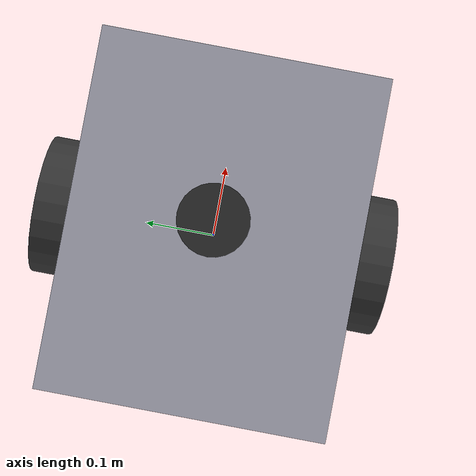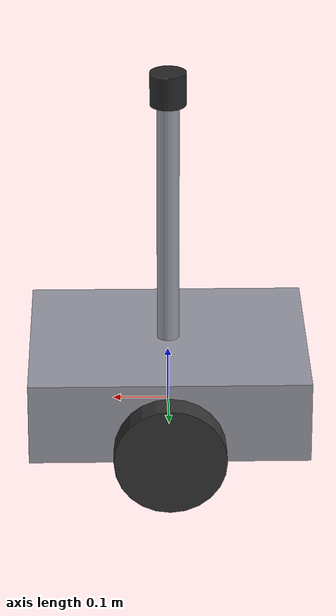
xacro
<?xml version="1.0"?>
<robot name="test_rig" xmlns:xacro="http://www.ros.org/wiki/xacro">
  <xacro:arg name="sensor" default="raycast"/>
  <xacro:arg name="lidar_mode" default="sliced"/>  <!-- sensor:=modes only -->
  <xacro:arg name="slices" default="5"/>          <!-- sensor:=modes, lidar_mode:=sliced -->
  <xacro:arg name="geometry_source" default="collision"/>
  <xacro:arg name="pattern_file" default="model://livox_mid360/scan_mode/mid360.csv"/>
  <xacro:arg name="dense_rate" default="50"/>
  <xacro:arg name="range_noise" default="0.02"/>
  <xacro:arg name="dense_h" default="1440"/>
  <xacro:arg name="dense_v" default="160"/>

  <xacro:include filename="$(find livox_mid360_sim)/urdf/livox_mid360.urdf.xacro"/>

  <xacro:property name="wheel_r" value="0.1"/>
  <xacro:property name="wheel_sep" value="0.45"/>
  <xacro:property name="mast_len" value="0.45"/>

  <material name="rig_grey"><color rgba="0.6 0.6 0.65 1"/></material>
  <material name="rig_dark"><color rgba="0.2 0.2 0.2 1"/></material>

  <link name="base_link">
    <inertial>
      <origin xyz="0 0 0.05"/>
      <mass value="8.0"/>
      <inertia ixx="0.12" iyy="0.18" izz="0.27" ixy="0" ixz="0" iyz="0"/>
    </inertial>
    <visual>
      <origin xyz="0 0 0.05"/>
      <geometry><box size="0.5 0.4 0.15"/></geometry>
      <material name="rig_grey"/>
    </visual>
    <collision>
      <origin xyz="0 0 0.05"/>
      <geometry><box size="0.5 0.4 0.15"/></geometry>
    </collision>
    <!-- casters (frictionless spheres) -->
    <collision>
      <origin xyz="0.2 0 -0.05"/>
      <geometry><sphere radius="0.05"/></geometry>
    </collision>
    <collision>
      <origin xyz="-0.2 0 -0.05"/>
      <geometry><sphere radius="0.05"/></geometry>
    </collision>
    <visual>
      <origin xyz="0.2 0 -0.05"/>
      <geometry><sphere radius="0.05"/></geometry>
      <material name="rig_dark"/>
    </visual>
    <visual>
      <origin xyz="-0.2 0 -0.05"/>
      <geometry><sphere radius="0.05"/></geometry>
      <material name="rig_dark"/>
    </visual>
  </link>
  <gazebo reference="base_link">
    <mu1>0.0</mu1>
    <mu2>0.0</mu2>
  </gazebo>

  <xacro:macro name="wheel" params="side y">
    <link name="${side}_wheel">
      <inertial>
        <mass value="1.0"/>
        <inertia ixx="0.0028" iyy="0.005" izz="0.0028" ixy="0" ixz="0" iyz="0"/>
      </inertial>
      <visual>
        <origin rpy="${pi/2} 0 0"/>
        <geometry><cylinder radius="${wheel_r}" length="0.05"/></geometry>
        <material name="rig_dark"/>
      </visual>
      <collision>
        <origin rpy="${pi/2} 0 0"/>
        <geometry><cylinder radius="${wheel_r}" length="0.05"/></geometry>
      </collision>
    </link>
    <joint name="${side}_wheel_joint" type="continuous">
      <parent link="base_link"/>
      <child link="${side}_wheel"/>
      <origin xyz="0 ${y} 0"/>
      <axis xyz="0 1 0"/>
    </joint>
    <gazebo reference="${side}_wheel">
      <mu1>1.0</mu1>
      <mu2>1.0</mu2>
    </gazebo>
  </xacro:macro>
  <xacro:wheel side="left" y="${wheel_sep/2}"/>
  <xacro:wheel side="right" y="${-wheel_sep/2}"/>

  <link name="mast">
    <inertial>
      <origin xyz="0 0 ${mast_len/2}"/>
      <mass value="0.3"/>
      <inertia ixx="0.005" iyy="0.005" izz="0.0001" ixy="0" ixz="0" iyz="0"/>
    </inertial>
    <visual>
      <origin xyz="0 0 ${mast_len/2}"/>
      <geometry><cylinder radius="0.02" length="${mast_len}"/></geometry>
      <material name="rig_grey"/>
    </visual>
    <collision>
      <origin xyz="0 0 ${mast_len/2}"/>
      <geometry><cylinder radius="0.02" length="${mast_len}"/></geometry>
    </collision>
  </link>
  <joint name="mast_joint" type="fixed">
    <parent link="base_link"/>
    <child link="mast"/>
    <origin xyz="0 0 0.125"/>
  </joint>

  <xacro:livox_mid360 parent="mast" xyz="0 0 ${mast_len}" rpy="0 0 0" sensor="$(arg sensor)"
                      geometry_source="$(arg geometry_source)"
                      pattern_file="$(arg pattern_file)" dense_rate="$(arg dense_rate)"
                      range_noise="$(arg range_noise)"
                      dense_h_samples="$(arg dense_h)" dense_v_samples="$(arg dense_v)"
                      lidar_mode="$(arg lidar_mode)" slices="$(arg slices)"/>

  <gazebo>
    <plugin filename="gz-sim-diff-drive-system" name="gz::sim::systems::DiffDrive">
      <left_joint>left_wheel_joint</left_joint>
      <right_joint>right_wheel_joint</right_joint>
      <wheel_separation>${wheel_sep}</wheel_separation>
      <wheel_radius>${wheel_r}</wheel_radius>
      <topic>/cmd_vel</topic>
      <odom_topic>/odom</odom_topic>
      <tf_topic>/tf</tf_topic>
      <frame_id>odom</frame_id>
      <child_frame_id>base_link</child_frame_id>
      <odom_publish_frequency>50</odom_publish_frequency>
      <max_linear_acceleration>2.0</max_linear_acceleration>
      <min_linear_acceleration>-2.0</min_linear_acceleration>
      <max_angular_acceleration>4.0</max_angular_acceleration>
      <min_angular_acceleration>-4.0</min_angular_acceleration>
    </plugin>
    <!-- ground truth: world pose of base_link (bridged to /ground_truth/pose) -->
    <plugin filename="gz-sim-pose-publisher-system" name="gz::sim::systems::PosePublisher">
      <publish_link_pose>false</publish_link_pose>
      <publish_model_pose>true</publish_model_pose>
      <publish_nested_model_pose>false</publish_nested_model_pose>
      <use_pose_vector_msg>false</use_pose_vector_msg>
      <update_frequency>1000</update_frequency>
    </plugin>
    <plugin filename="gz-sim-joint-state-publisher-system"
            name="gz::sim::systems::JointStatePublisher">
      <topic>/joint_states</topic>
    </plugin>
  </gazebo>
</robot>

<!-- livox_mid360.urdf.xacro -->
<robot xmlns:xacro="http://www.ros.org/wiki/xacro">
  <xacro:macro name="livox_mid360"
    params="parent xyz:='0 0 0' rpy:='0 0 0'
            sensor:=raycast frame_id:=livox_frame
            points_topic:=/livox/points imu_topic:=/livox/imu_raw dense_topic:=/livox/dense_scan
            point_rate:=200000 frame_rate:=10 imu_rate:=200 dense_rate:=50
            geometry_source:=collision
            dense_h_samples:=1440 dense_v_samples:=160
            pattern_file:=model://livox_mid360/scan_mode/mid360.csv
            range_noise:=0.02 min_range:=0.1 max_range:=70.0 nominal_range:=40.0
            lidar_mode:=sliced slices:=5">

    <link name="${frame_id}_base">
      <inertial>
        <origin xyz="0 0 0.03"/>
        <mass value="0.265"/>
        <inertia ixx="1.73e-4" iyy="1.73e-4" izz="1.40e-4" ixy="0" ixz="0" iyz="0"/>
      </inertial>
      <visual>
        <origin xyz="0 0 0.03"/>
        <geometry><cylinder radius="0.0325" length="0.06"/></geometry>
        <material name="livox_black"><color rgba="0.15 0.15 0.15 1"/></material>
      </visual>
      <collision>
        <origin xyz="0 0 0.03"/>
        <geometry><cylinder radius="0.0325" length="0.06"/></geometry>
      </collision>
    </link>
    <joint name="${frame_id}_mount_joint" type="fixed">
      <parent link="${parent}"/>
      <child link="${frame_id}_base"/>
      <origin xyz="${xyz}" rpy="${rpy}"/>
    </joint>

    <link name="${frame_id}">
      <inertial>
        <mass value="0.001"/>
        <inertia ixx="1e-7" iyy="1e-7" izz="1e-7" ixy="0" ixz="0" iyz="0"/>
      </inertial>
    </link>
    <joint name="${frame_id}_joint" type="fixed">
      <parent link="${frame_id}_base"/>
      <child link="${frame_id}"/>
      <origin xyz="0 0 0.047" rpy="0 0 0"/>
    </joint>
    <!-- keep the optical-centre link through URDF->SDF fixed-joint lumping -->
    <gazebo reference="${frame_id}_joint">
      <preserveFixedJoint>true</preserveFixedJoint>
    </gazebo>

    <gazebo reference="${frame_id}">
      <xacro:if value="${sensor == 'modes'}">
        <sensor name="${frame_id}_dense_lidar" type="gpu_lidar">
          <pose>0 0 0 0 0 0</pose>
          <topic>${dense_topic}</topic>
          <update_rate>${frame_rate * int(slices) if lidar_mode == 'sliced' else (1 if lidar_mode == 'raycast' else frame_rate)}</update_rate>
          <always_on>true</always_on>
          <visualize>false</visualize>
          <lidar>
            <scan>
              <horizontal>
                <samples>${dense_h_samples}</samples>
                <resolution>1</resolution>
                <min_angle>${-pi}</min_angle>
                <max_angle>${pi}</max_angle>
              </horizontal>
              <vertical>
                <samples>${dense_v_samples}</samples>
                <resolution>1</resolution>
                <min_angle>${radians(-7.5)}</min_angle>
                <max_angle>${radians(52.5)}</max_angle>
              </vertical>
            </scan>
            <range>
              <min>${min_range}</min>
              <max>${max_range}</max>
              <resolution>0.002</resolution>
            </range>
            <xacro:if value="${float(range_noise) > 0}">
              <noise>
                <type>gaussian</type>
                <mean>0.0</mean>
                <stddev>${range_noise}</stddev>
              </noise>
            </xacro:if>
          </lidar>
        </sensor>
      </xacro:if>

      <xacro:if value="${sensor == 'gpu'}">
        <sensor name="${frame_id}_dense" type="gpu_lidar">
          <pose>0 0 0 0 0 0</pose>
          <topic>${dense_topic}</topic>
          <update_rate>${dense_rate}</update_rate>
          <always_on>true</always_on>
          <visualize>false</visualize>
          <lidar>
            <scan>
              <horizontal>
                <samples>${dense_h_samples}</samples>
                <resolution>1</resolution>
                <min_angle>${-pi}</min_angle>
                <max_angle>${pi - 2*pi/dense_h_samples}</max_angle>
              </horizontal>
              <vertical>
                <samples>${dense_v_samples}</samples>
                <resolution>1</resolution>
                <min_angle>${radians(-7.5)}</min_angle>
                <max_angle>${radians(52.5)}</max_angle>
              </vertical>
            </scan>
            <range>
              <min>${min_range}</min>
              <max>${max_range}</max>
              <resolution>0.001</resolution>
            </range>
          </lidar>
        </sensor>
      </xacro:if>

      <sensor name="${frame_id}_imu" type="imu">
        <pose>0.011 0.02329 -0.04412 0 0 0</pose>
        <topic>${imu_topic}</topic>
        <update_rate>${imu_rate}</update_rate>
        <always_on>true</always_on>
        <imu>
          <angular_velocity>
            <x><noise type="gaussian"><mean>0</mean><stddev>6.6e-4</stddev></noise></x>
            <y><noise type="gaussian"><mean>0</mean><stddev>6.6e-4</stddev></noise></y>
            <z><noise type="gaussian"><mean>0</mean><stddev>6.6e-4</stddev></noise></z>
          </angular_velocity>
          <linear_acceleration>
            <x><noise type="gaussian"><mean>0</mean><stddev>0.01</stddev></noise></x>
            <y><noise type="gaussian"><mean>0</mean><stddev>0.01</stddev></noise></y>
            <z><noise type="gaussian"><mean>0</mean><stddev>0.01</stddev></noise></z>
          </linear_acceleration>
        </imu>
      </sensor>
    </gazebo>

    <xacro:if value="${sensor == 'modes'}">
      <gazebo>
        <plugin filename="livox_mid360_modes_system"
                name="livox_mid360_sim::modes::LivoxMid360Modes">
          <input_topic>${dense_topic}</input_topic>
          <output_topic>${points_topic}</output_topic>
          <frame_id>${frame_id}</frame_id>
          <frame_rate>${frame_rate}</frame_rate>
          <points_per_second>${point_rate}</points_per_second>
          <min_range>${min_range}</min_range>
          <max_range>${max_range}</max_range>
          <pattern_file>${pattern_file}</pattern_file>
          <mode>${lidar_mode}</mode>
          <slices>${slices}</slices>
          <sensor_name>${frame_id}_dense_lidar</sensor_name>
          <range_noise>${range_noise}</range_noise>
        </plugin>
      </gazebo>
    </xacro:if>

    <xacro:unless value="${sensor == 'modes'}">
    <gazebo>
      <plugin filename="livox_mid360_sim_system"
              name="livox_mid360_sim::${'LivoxMid360Gpu' if sensor == 'gpu' else 'LivoxMid360Raycast'}">
        <frame_id>${frame_id}</frame_id>
        <link_name>${frame_id}</link_name>
        <dense_topic>${dense_topic}</dense_topic>
        <geometry_source>${geometry_source}</geometry_source>
        <points_topic>${points_topic}</points_topic>
        <pattern_file>${pattern_file}</pattern_file>
        <point_rate>${point_rate}</point_rate>
        <frame_rate>${frame_rate}</frame_rate>
        <min_range>${min_range}</min_range>
        <max_range>${max_range}</max_range>
        <nominal_range>${nominal_range}</nominal_range>
        <range_noise_stddev>${range_noise}</range_noise_stddev>
      </plugin>
    </gazebo>
    </xacro:unless>
  </xacro:macro>
</robot>
